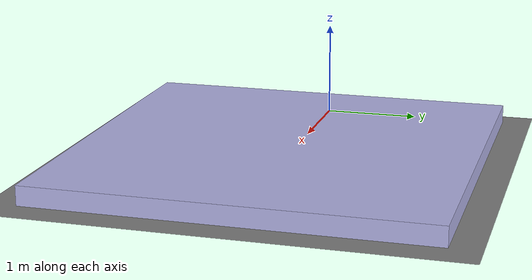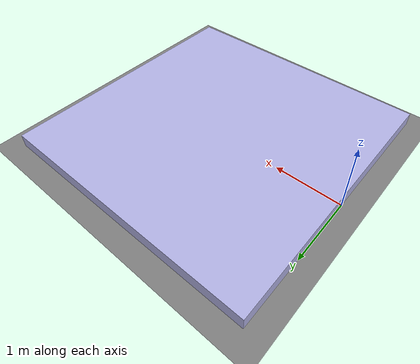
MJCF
<mujoco>
    <worldbody>
        <!-- base ground -->
        <geom type="plane" size="10 10 0.1"/>

        <!-- slope -->
        <geom
            type="box"
            size="2 2 0.1"
            pos="2 0 0.1"
            euler="0 0.2 0"
            friction="1 0.005 0.0001"
            rgba="0.7 0.7 0.9 1"/>
    </worldbody>
</mujoco>
